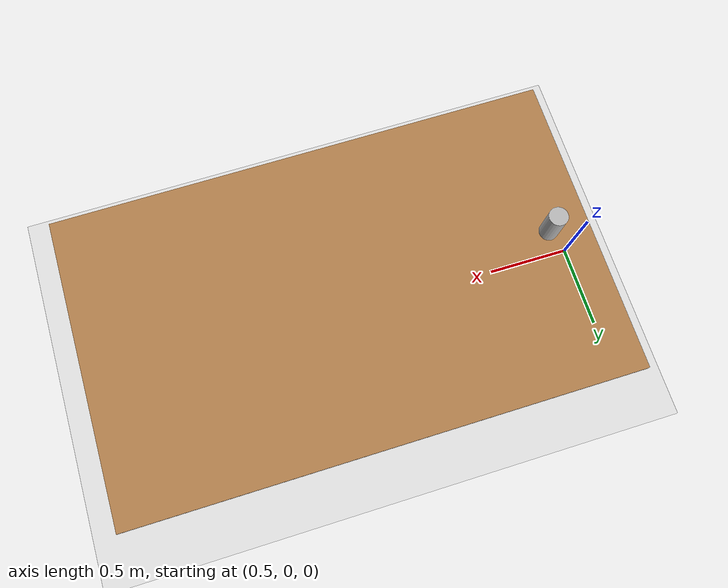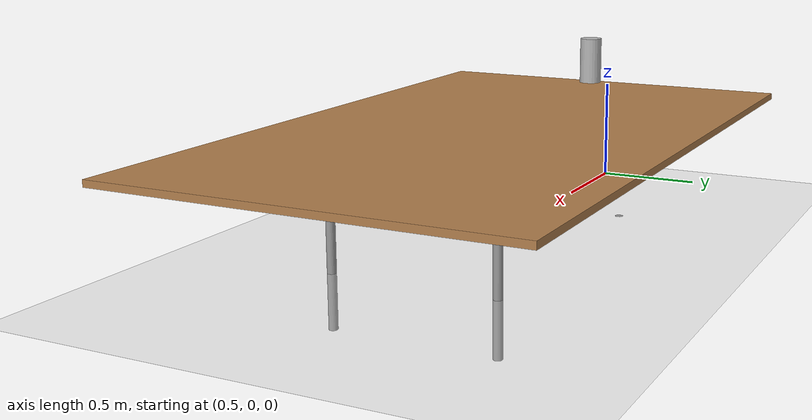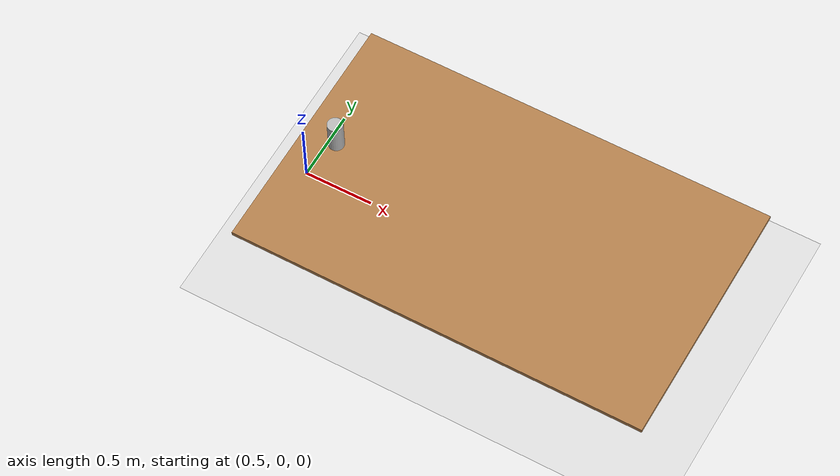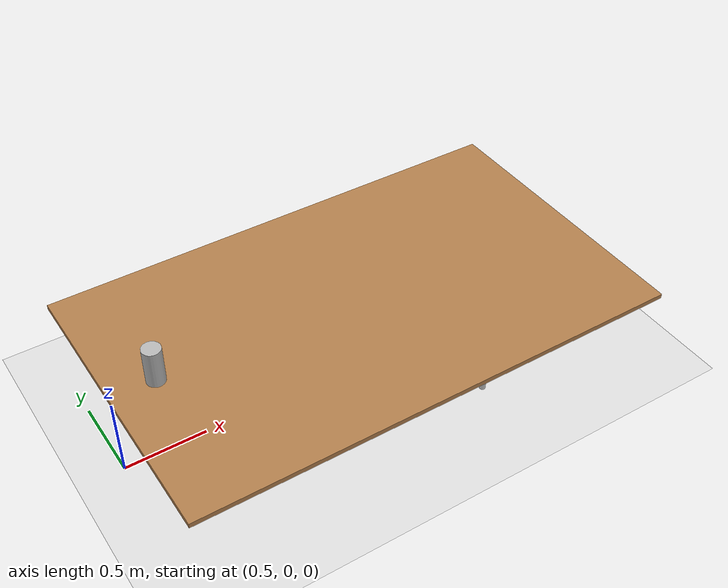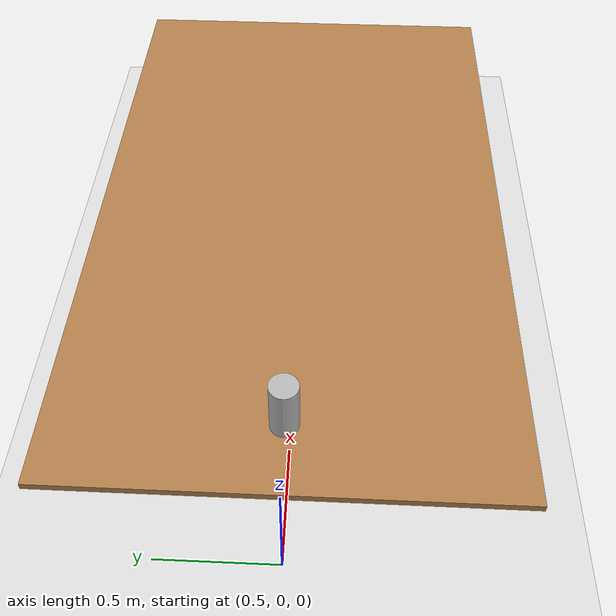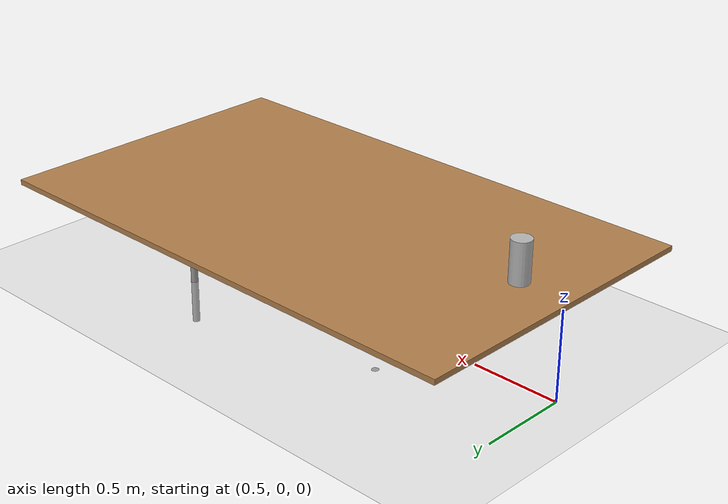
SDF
<sdf version="1.3">
 <world name="default">
  <light name="sun" type="directional">
   <pose>0.000000 0.000000 10.000000 0.000000 0.000000 0.000000</pose>
   <diffuse>0.800000 0.800000 0.800000 1.000000</diffuse>
   <specular>0.100000 0.100000 0.100000 1.000000</specular>
   <attenuation>
    <range>1000.000000</range>
    <constant>0.900000</constant>
    <linear>0.010000</linear>
    <quadratic>0.001000</quadratic>
   </attenuation>
   <direction>-0.500000 0.500000 -1.000000</direction>
  </light>
  <model name="ground_plane">
   <static>1</static>
   <link name="link">
    <collision name="collision">
     <geometry>
      <plane><normal>0.000000 0.000000 1.000000</normal><size>100.000000 100.000000</size></plane>
     </geometry>
     <surface><friction><ode><mu>100.000000</mu><mu2>50.000000</mu2></ode></friction></surface>
    </collision>
    <visual name="visual">
     <cast_shadows>0</cast_shadows>
     <geometry>
      <plane><normal>0.000000 0.000000 1.000000</normal><size>100.000000 100.000000</size></plane>
     </geometry>
     <material>
      <script><uri>file://media/materials/scripts/gazebo.material</uri><name>Gazebo/Grey</name></script>
     </material>
    </visual>
    <velocity_decay><linear>0.000000</linear><angular>0.000000</angular></velocity_decay>
   </link>
  </model>
  <physics type="ode">
   <update_rate>1000.000000</update_rate>
   <gravity>0.000000 0.000000 -9.800000</gravity>
  </physics>
  <scene>
   <ambient>0.200000 0.200000 0.200000 1.000000</ambient>
   <background>0.700000 0.700000 0.700000 1.000000</background>
   <shadows>1</shadows>
  </scene>
  <model name="table_SUTURO">
   <static>1</static>
   <link name="link">
    <collision name="surface">
     <pose>0.000000 0.000000 0.500000 0.000000 0.000000 0.000000</pose>
     <geometry><box><size>3.000000 1.000000 0.030000</size></box></geometry>
    </collision>
    <visual name="visual1">
     <pose>0.000000 0.000000 0.500000 0.000000 0.000000 0.000000</pose>
     <geometry><box><size>3.000000 1.800000 0.030000</size></box></geometry>
     <material>
      <script><uri>file://media/materials/scripts/gazebo.material</uri><name>Gazebo/Wood</name></script>
     </material>
    </visual>
    <collision name="front_left_leg">
     <pose>0.680000 0.380000 0.000000 0.000000 0.000000 0.000000</pose>
     <geometry><cylinder><radius>0.020000</radius><length>0.500000</length></cylinder></geometry>
    </collision>
    <visual name="front_left_leg">
     <pose>0.680000 0.380000 0.000000 0.000000 0.000000 0.000000</pose>
     <geometry><cylinder><radius>0.020000</radius><length>0.500000</length></cylinder></geometry>
     <material>
      <script><uri>file://media/materials/scripts/gazebo.material</uri><name>Gazebo/Grey</name></script>
     </material>
    </visual>
    <collision name="front_right_leg">
     <pose>0.680000 -0.380000 0.000000 0.000000 0.000000 0.000000</pose>
     <geometry><cylinder><radius>0.020000</radius><length>0.500000</length></cylinder></geometry>
    </collision>
    <visual name="front_right_leg">
     <pose>0.680000 -0.380000 0.000000 0.000000 0.000000 0.000000</pose>
     <geometry><cylinder><radius>0.020000</radius><length>0.500000</length></cylinder></geometry>
     <material>
      <script><uri>file://media/materials/scripts/gazebo.material</uri><name>Gazebo/Grey</name></script>
     </material>
    </visual>
    <collision name="back_right_leg">
     <pose>-0.680000 -0.380000 0.000000 0.000000 0.000000 0.000000</pose>
     <geometry><cylinder><radius>0.020000</radius><length>0.000000</length></cylinder></geometry>
    </collision>
    <visual name="back_right_leg">
     <pose>-0.680000 -0.380000 0.000000 0.000000 0.000000 0.000000</pose>
     <geometry><cylinder><radius>0.020000</radius><length>0.000000</length></cylinder></geometry>
     <material>
      <script><uri>file://media/materials/scripts/gazebo.material</uri><name>Gazebo/Grey</name></script>
     </material>
    </visual>
    <collision name="back_left_leg">
     <pose>-0.680000 0.380000 0.000000 0.000000 0.000000 0.000000</pose>
     <geometry><cylinder><radius>0.020000</radius><length>0.000000</length></cylinder></geometry>
    </collision>
    <visual name="back_left_leg">
     <pose>-0.680000 0.380000 0.000000 0.000000 0.000000 0.000000</pose>
     <geometry><cylinder><radius>0.020000</radius><length>0.000000</length></cylinder></geometry>
     <material>
      <script><uri>file://media/materials/scripts/gazebo.material</uri><name>Gazebo/Grey</name></script>
     </material>
    </visual>
    <velocity_decay><linear>0.000000</linear><angular>0.000000</angular></velocity_decay>
   </link>
   <pose>2.000000 0.000000 0.000000 0.000000 0.000000 0.000000</pose>
  </model>
  <model name="beer_2">
   <link name="link">
    <pose>0.000000 0.000000 0.115000 0.000000 0.000000 0.000000</pose>
    <inertial>
     <mass>0.390000</mass>
     <inertia>
      <ixx>0.000580</ixx>
      <ixy>0.000000</ixy>
      <ixz>0.000000</ixz>
      <iyy>0.000580</iyy>
      <iyz>0.000000</iyz>
      <izz>0.000190</izz>
     </inertia>
    </inertial>
    <collision name="collision">
     <geometry><cylinder><radius>0.055000</radius><length>0.230000</length></cylinder></geometry>
    </collision>
    <visual name="visual">
     <geometry><cylinder><radius>0.055000</radius><length>0.230000</length></cylinder></geometry>
     <material>
      <script>
       <uri>model://beer/materials/scripts</uri>
       <uri>model://beer/materials/textures</uri>
       <name>Beer/Diffuse</name>
      </script>
     </material>
    </visual>
    <velocity_decay><linear>0.000000</linear><angular>0.000000</angular></velocity_decay>
   </link>
   <pose>0.760000 0.000000 0.550000 0.000000 0.000000 0.000000</pose>
   <static>0</static>
  </model>
 </world>
</sdf>
